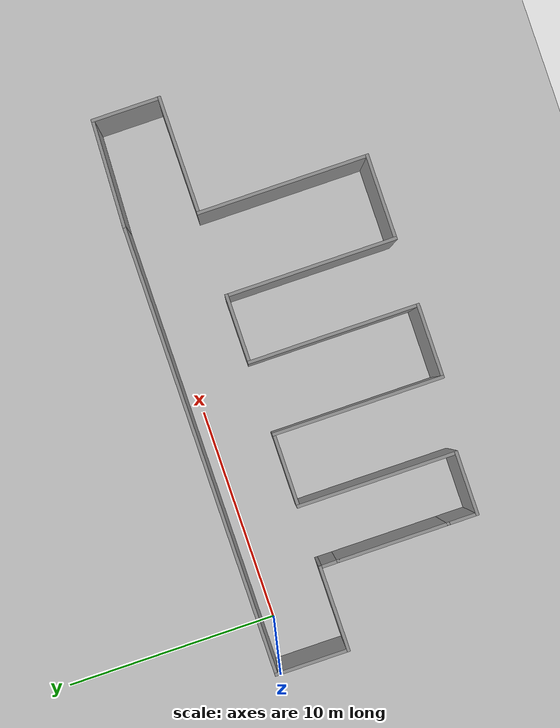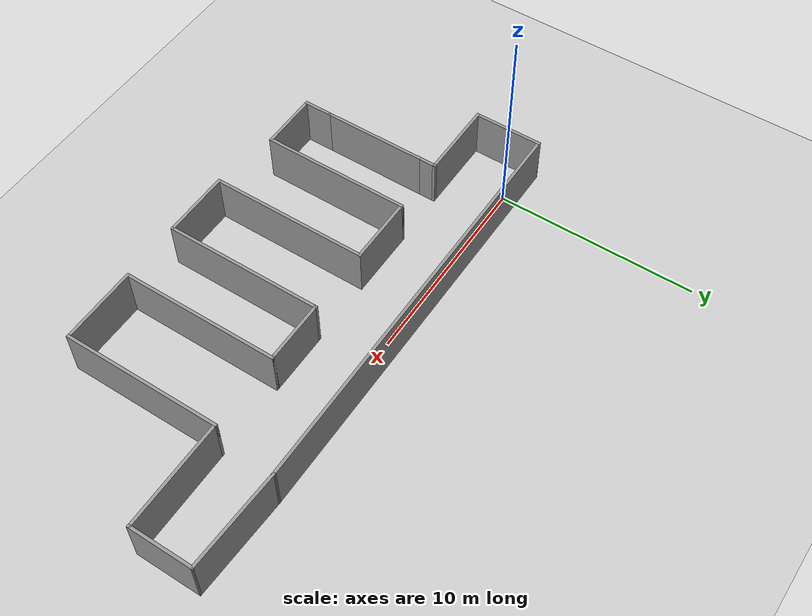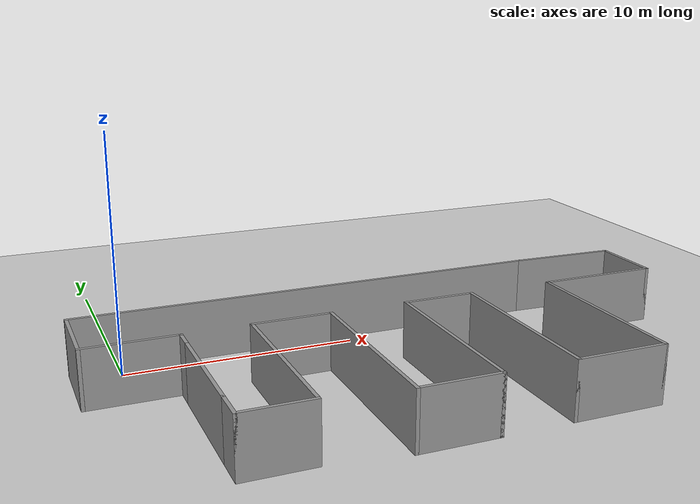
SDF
<sdf version="1.7">
 <world name="lab_world">
  <gravity>0 0 -9.8</gravity>
  <model name="ground_plane">
   <static>1</static>
   <link name="link">
    <collision name="collision">
     <geometry><plane><normal>0 0 1</normal><size>100 100</size></plane></geometry>
     <surface><friction><ode><mu>100</mu><mu2>50</mu2></ode></friction></surface>
    </collision>
    <visual name="visual">
     <cast_shadows>0</cast_shadows>
     <geometry><plane><normal>0 0 1</normal><size>100 100</size></plane></geometry>
     <material>
      <script><uri>file://media/materials/scripts/gazebo.material</uri><name>Gazebo/Grey</name></script>
     </material>
    </visual>
   </link>
  </model>
  <light name="sun" type="directional">
   <pose>0 0 10 0 -0 0</pose>
   <diffuse>0.8 0.8 0.8 1</diffuse>
   <specular>0.2 0.2 0.2 1</specular>
   <attenuation>
    <range>1000</range>
    <constant>0.9</constant>
    <linear>0.01</linear>
    <quadratic>0.001</quadratic>
   </attenuation>
   <direction>-0.5 0.1 -0.9</direction>
   <spot><inner_angle>0</inner_angle><outer_angle>0</outer_angle><falloff>0</falloff></spot>
  </light>
  <magnetic_field>6e-06 2.3e-05 -4.2e-05</magnetic_field>
  <atmosphere type="adiabatic"/>
  <physics type="ode">
   <max_step_size>0.001</max_step_size>
   <real_time_factor>1</real_time_factor>
   <real_time_update_rate>1000</real_time_update_rate>
  </physics>
  <scene><ambient>0.4 0.4 0.4 1</ambient><background>0.7 0.7 0.7 1</background><shadows>1</shadows></scene>
  <spherical_coordinates>
   <surface_model>EARTH_WGS84</surface_model>
   <latitude_deg>0</latitude_deg>
   <longitude_deg>0</longitude_deg>
   <elevation>0</elevation>
   <heading_deg>0</heading_deg>
  </spherical_coordinates>
  <model name="test2">
   <pose>10.8915 -4.97349 0 0 -0 0</pose>
   <link name="Wall_0">
    <collision name="Wall_0_Collision">
     <geometry><box><size>1 0.15 2.5</size></box></geometry>
     <pose>0 0 1.25 0 -0 0</pose>
    </collision>
    <visual name="Wall_0_Visual">
     <pose>0 0 1.25 0 -0 0</pose>
     <geometry><box><size>1 0.15 2.5</size></box></geometry>
     <material>
      <script><uri>file://media/materials/scripts/gazebo.material</uri><name>Gazebo/Grey</name></script>
      <ambient>1 1 1 1</ambient>
     </material>
     <meta><layer>0</layer></meta>
    </visual>
    <pose>-9.00151 1.79849 0 0 -0 1.5708</pose>
   </link>
   <link name="Wall_1">
    <collision name="Wall_1_Collision">
     <geometry><box><size>4 0.15 2.5</size></box></geometry>
     <pose>0 0 1.25 0 -0 0</pose>
    </collision>
    <visual name="Wall_1_Visual">
     <pose>0 0 1.25 0 -0 0</pose>
     <geometry><box><size>4 0.15 2.5</size></box></geometry>
     <material>
      <script><uri>file://media/materials/scripts/gazebo.material</uri><name>Gazebo/Grey</name></script>
      <ambient>1 1 1 1</ambient>
     </material>
     <meta><layer>0</layer></meta>
    </visual>
    <pose>-10.9265 2.22349 0 0 -0 3.14159</pose>
   </link>
   <link name="Wall_10">
    <collision name="Wall_10_Collision">
     <geometry><box><size>8 0.15 2.5</size></box></geometry>
     <pose>0 0 1.25 0 -0 0</pose>
    </collision>
    <visual name="Wall_10_Visual">
     <pose>0 0 1.25 0 -0 0</pose>
     <geometry><box><size>8 0.15 2.5</size></box></geometry>
     <material>
      <script><uri>file://media/materials/scripts/gazebo.material</uri><name>Gazebo/Grey</name></script>
      <ambient>1 1 1 1</ambient>
     </material>
     <meta><layer>0</layer></meta>
    </visual>
    <pose>-2.80151 -1.65151 0 0 -0 -1.5708</pose>
   </link>
   <link name="Wall_11">
    <collision name="Wall_11_Collision">
     <geometry><box><size>3.5 0.15 2.5</size></box></geometry>
     <pose>0 0 1.25 0 -0 0</pose>
    </collision>
    <visual name="Wall_11_Visual">
     <pose>0 0 1.25 0 -0 0</pose>
     <geometry><box><size>3.5 0.15 2.5</size></box></geometry>
     <material>
      <script><uri>file://media/materials/scripts/gazebo.material</uri><name>Gazebo/Grey</name></script>
      <ambient>1 1 1 1</ambient>
     </material>
     <meta><layer>0</layer></meta>
    </visual>
    <pose>-1.12651 -5.57651 0 0 -0 0</pose>
   </link>
   <link name="Wall_12">
    <collision name="Wall_12_Collision">
     <geometry><box><size>8 0.15 2.5</size></box></geometry>
     <pose>0 0 1.25 0 -0 0</pose>
    </collision>
    <visual name="Wall_12_Visual">
     <pose>0 0 1.25 0 -0 0</pose>
     <geometry><box><size>8 0.15 2.5</size></box></geometry>
     <material>
      <script><uri>file://media/materials/scripts/gazebo.material</uri><name>Gazebo/Grey</name></script>
      <ambient>1 1 1 1</ambient>
     </material>
     <meta><layer>0</layer></meta>
    </visual>
    <pose>0.548486 -1.65151 0 0 -0 1.5708</pose>
   </link>
   <link name="Wall_13">
    <collision name="Wall_13_Collision">
     <geometry><box><size>3.25 0.15 2.5</size></box></geometry>
     <pose>0 0 1.25 0 -0 0</pose>
    </collision>
    <visual name="Wall_13_Visual">
     <pose>0 0 1.25 0 -0 0</pose>
     <geometry><box><size>3.25 0.15 2.5</size></box></geometry>
     <material>
      <script><uri>file://media/materials/scripts/gazebo.material</uri><name>Gazebo/Grey</name></script>
      <ambient>1 1 1 1</ambient>
     </material>
     <meta><layer>0</layer></meta>
    </visual>
    <pose>2.09849 2.27349 0 0 -0 0</pose>
   </link>
   <link name="Wall_14">
    <collision name="Wall_14_Collision">
     <geometry><box><size>8 0.15 2.5</size></box></geometry>
     <pose>0 0 1.25 0 -0 0</pose>
    </collision>
    <visual name="Wall_14_Visual">
     <pose>0 0 1.25 0 -0 0</pose>
     <geometry><box><size>8 0.15 2.5</size></box></geometry>
     <material>
      <script><uri>file://media/materials/scripts/gazebo.material</uri><name>Gazebo/Grey</name></script>
      <ambient>1 1 1 1</ambient>
     </material>
     <meta><layer>0</layer></meta>
    </visual>
    <pose>3.64849 -1.65151 0 0 -0 -1.5708</pose>
   </link>
   <link name="Wall_15">
    <collision name="Wall_15_Collision">
     <geometry><box><size>4 0.15 2.5</size></box></geometry>
     <pose>0 0 1.25 0 -0 0</pose>
    </collision>
    <visual name="Wall_15_Visual">
     <pose>0 0 1.25 0 -0 0</pose>
     <geometry><box><size>4 0.15 2.5</size></box></geometry>
     <material>
      <script><uri>file://media/materials/scripts/gazebo.material</uri><name>Gazebo/Grey</name></script>
      <ambient>1 1 1 1</ambient>
     </material>
     <meta><layer>0</layer></meta>
    </visual>
    <pose>5.57349 -5.57651 0 0 -0 0</pose>
   </link>
   <link name="Wall_16">
    <collision name="Wall_16_Collision">
     <geometry><box><size>8 0.15 2.5</size></box></geometry>
     <pose>0 0 1.25 0 -0 0</pose>
    </collision>
    <visual name="Wall_16_Visual">
     <pose>0 0 1.25 0 -0 0</pose>
     <geometry><box><size>8 0.15 2.5</size></box></geometry>
     <material>
      <script><uri>file://media/materials/scripts/gazebo.material</uri><name>Gazebo/Grey</name></script>
      <ambient>1 1 1 1</ambient>
     </material>
     <meta><layer>0</layer></meta>
    </visual>
    <pose>7.49849 -1.65151 0 0 -0 1.5708</pose>
   </link>
   <link name="Wall_17">
    <collision name="Wall_17_Collision">
     <geometry><box><size>5.5 0.15 2.5</size></box></geometry>
     <pose>0 0 1.25 0 -0 0</pose>
    </collision>
    <visual name="Wall_17_Visual">
     <pose>0 0 1.25 0 -0 0</pose>
     <geometry><box><size>5.5 0.15 2.5</size></box></geometry>
     <material>
      <script><uri>file://media/materials/scripts/gazebo.material</uri><name>Gazebo/Grey</name></script>
      <ambient>1 1 1 1</ambient>
     </material>
     <meta><layer>0</layer></meta>
    </visual>
    <pose>10.1735 2.27349 0 0 -0 0</pose>
   </link>
   <link name="Wall_18">
    <collision name="Wall_18_Collision">
     <geometry><box><size>3.25 0.15 2.5</size></box></geometry>
     <pose>0 0 1.25 0 -0 0</pose>
    </collision>
    <visual name="Wall_18_Visual">
     <pose>0 0 1.25 0 -0 0</pose>
     <geometry><box><size>3.25 0.15 2.5</size></box></geometry>
     <material>
      <script><uri>file://media/materials/scripts/gazebo.material</uri><name>Gazebo/Grey</name></script>
      <ambient>1 1 1 1</ambient>
     </material>
     <meta><layer>0</layer></meta>
    </visual>
    <pose>12.8485 3.82349 0 0 -0 1.5708</pose>
   </link>
   <link name="Wall_19">
    <collision name="Wall_19_Collision">
     <geometry><box><size>5.00412 0.15 2.5</size></box></geometry>
     <pose>0 0 1.25 0 -0 0</pose>
    </collision>
    <visual name="Wall_19_Visual">
     <pose>0 0 1.25 0 -0 0</pose>
     <geometry><box><size>5.00412 0.15 2.5</size></box></geometry>
     <material>
      <script><uri>file://media/materials/scripts/gazebo.material</uri><name>Gazebo/Grey</name></script>
      <ambient>1 1 1 1</ambient>
     </material>
     <meta><layer>0</layer></meta>
    </visual>
    <pose>10.4235 5.47349 0 0 -0 3.10038</pose>
   </link>
   <link name="Wall_2">
    <collision name="Wall_2_Collision">
     <geometry><box><size>3.5 0.15 2.5</size></box></geometry>
     <pose>0 0 1.25 0 -0 0</pose>
    </collision>
    <visual name="Wall_2_Visual">
     <pose>0 0 1.25 0 -0 0</pose>
     <geometry><box><size>3.5 0.15 2.5</size></box></geometry>
     <material>
      <script><uri>file://media/materials/scripts/gazebo.material</uri><name>Gazebo/Grey</name></script>
      <ambient>1 1 1 1</ambient>
     </material>
     <meta><layer>0</layer></meta>
    </visual>
    <pose>-12.8515 3.89849 0 0 -0 1.5708</pose>
   </link>
   <link name="Wall_3">
    <collision name="Wall_3_Collision">
     <geometry><box><size>21 0.15 2.5</size></box></geometry>
     <pose>0 0 1.25 0 -0 0</pose>
    </collision>
    <visual name="Wall_3_Visual">
     <pose>0 0 1.25 0 -0 0</pose>
     <geometry><box><size>21 0.15 2.5</size></box></geometry>
     <material>
      <script><uri>file://media/materials/scripts/gazebo.material</uri><name>Gazebo/Grey</name></script>
      <ambient>1 1 1 1</ambient>
     </material>
     <meta><layer>0</layer></meta>
    </visual>
    <pose>-2.42651 5.57349 0 0 -0 0</pose>
   </link>
   <link name="Wall_5">
    <collision name="Wall_5_Collision">
     <geometry><box><size>5.25 0.15 2.5</size></box></geometry>
     <pose>0 0 1.25 0 -0 0</pose>
    </collision>
    <visual name="Wall_5_Visual">
     <pose>0 0 1.25 0 -0 0</pose>
     <geometry><box><size>5.25 0.15 2.5</size></box></geometry>
     <material>
      <script><uri>file://media/materials/scripts/gazebo.material</uri><name>Gazebo/Grey</name></script>
      <ambient>1 1 1 1</ambient>
     </material>
     <meta><layer>0</layer></meta>
    </visual>
    <pose>-9.00151 -1.17651 0 0 -0 -1.5708</pose>
   </link>
   <link name="Wall_6">
    <collision name="Wall_6_Collision">
     <geometry><box><size>1.5 0.15 2.5</size></box></geometry>
     <pose>0 0 1.25 0 -0 0</pose>
    </collision>
    <visual name="Wall_6_Visual">
     <pose>0 0 1.25 0 -0 0</pose>
     <geometry><box><size>1.5 0.15 2.5</size></box></geometry>
     <material>
      <script><uri>file://media/materials/scripts/gazebo.material</uri><name>Gazebo/Grey</name></script>
      <ambient>1 1 1 1</ambient>
     </material>
     <meta><layer>0</layer></meta>
    </visual>
    <pose>-9.00151 -4.40151 0 0 -0 -1.5708</pose>
   </link>
   <link name="Wall_7">
    <collision name="Wall_7_Collision">
     <geometry><box><size>3 0.15 2.5</size></box></geometry>
     <pose>0 0 1.25 0 -0 0</pose>
    </collision>
    <visual name="Wall_7_Visual">
     <pose>0 0 1.25 0 -0 0</pose>
     <geometry><box><size>3 0.15 2.5</size></box></geometry>
     <material>
      <script><uri>file://media/materials/scripts/gazebo.material</uri><name>Gazebo/Grey</name></script>
      <ambient>1 1 1 1</ambient>
     </material>
     <meta><layer>0</layer></meta>
    </visual>
    <pose>-7.57651 -5.07651 0 0 -0 0</pose>
   </link>
   <link name="Wall_8">
    <collision name="Wall_8_Collision">
     <geometry><box><size>7.5 0.15 2.5</size></box></geometry>
     <pose>0 0 1.25 0 -0 0</pose>
    </collision>
    <visual name="Wall_8_Visual">
     <pose>0 0 1.25 0 -0 0</pose>
     <geometry><box><size>7.5 0.15 2.5</size></box></geometry>
     <material>
      <script><uri>file://media/materials/scripts/gazebo.material</uri><name>Gazebo/Grey</name></script>
      <ambient>1 1 1 1</ambient>
     </material>
     <meta><layer>0</layer></meta>
    </visual>
    <pose>-6.15151 -1.40151 0 0 -0 1.5708</pose>
   </link>
   <link name="Wall_9">
    <collision name="Wall_9_Collision">
     <geometry><box><size>3.5 0.15 2.5</size></box></geometry>
     <pose>0 0 1.25 0 -0 0</pose>
    </collision>
    <visual name="Wall_9_Visual">
     <pose>0 0 1.25 0 -0 0</pose>
     <geometry><box><size>3.5 0.15 2.5</size></box></geometry>
     <material>
      <script><uri>file://media/materials/scripts/gazebo.material</uri><name>Gazebo/Grey</name></script>
      <ambient>1 1 1 1</ambient>
     </material>
     <meta><layer>0</layer></meta>
    </visual>
    <pose>-4.47651 2.27349 0 0 -0 0</pose>
   </link>
   <static>1</static>
  </model>
 </world>
</sdf>
